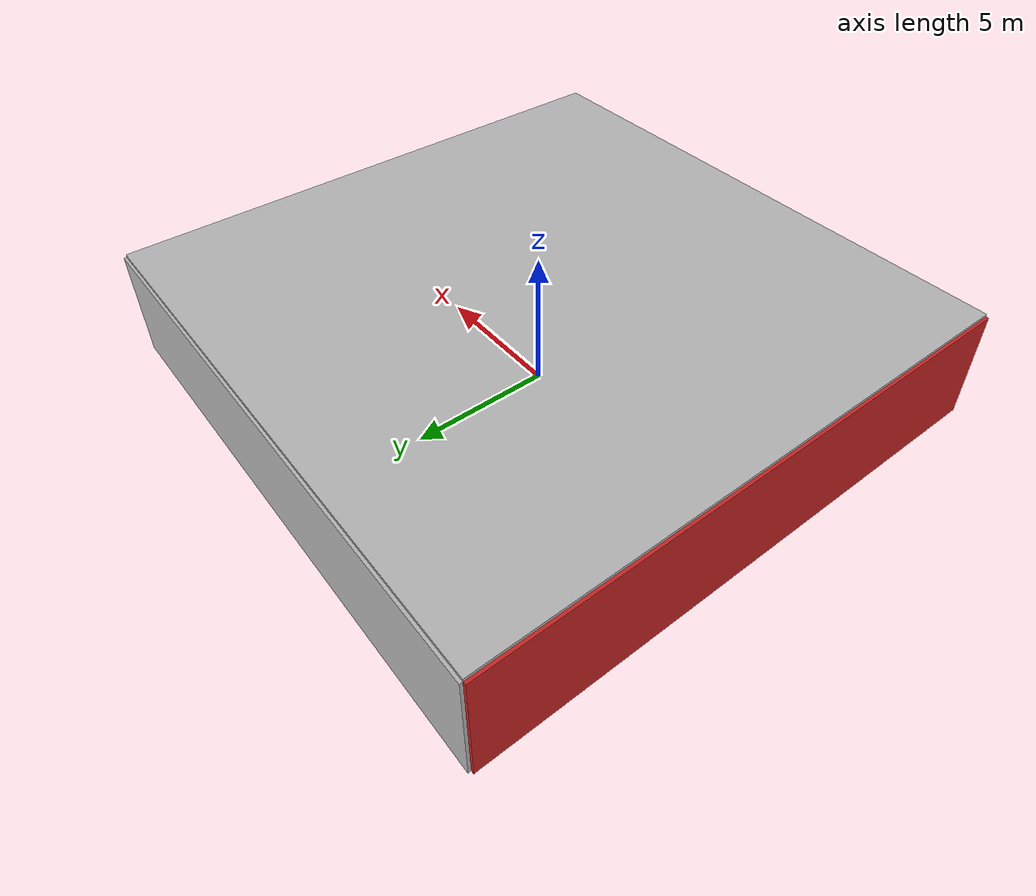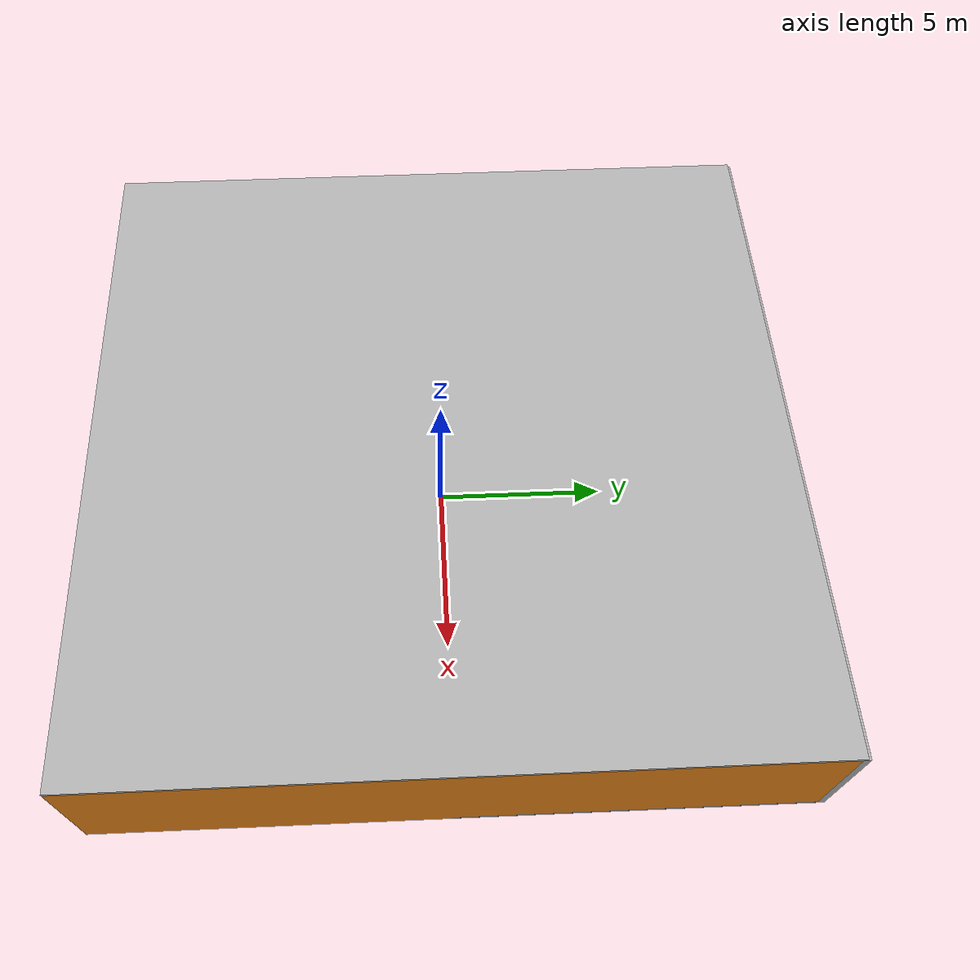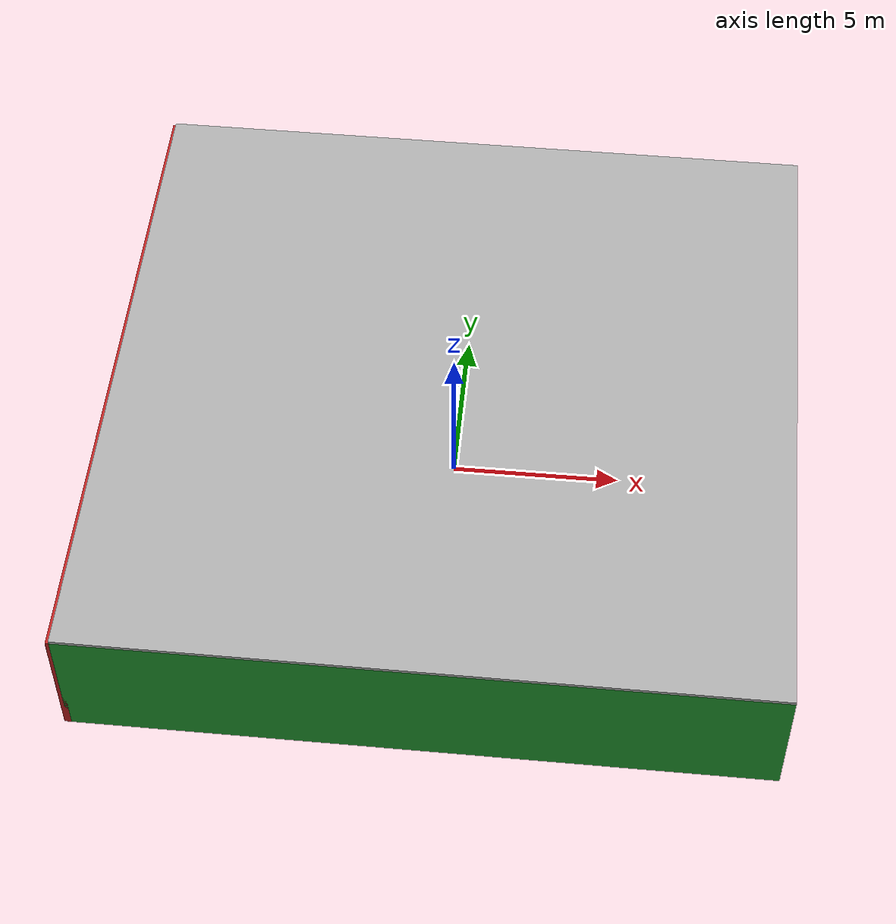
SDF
<sdf version="1.4">
 <world name="default">
  <physics type="ode">
   <max_step_size>0.001</max_step_size>
   <real_time_factor>1</real_time_factor>
   <real_time_update_rate>1000</real_time_update_rate>
   <gravity>0 0 -9.8</gravity>
  </physics>
  <scene><ambient>0.4 0.4 0.4 1</ambient><background>0.7 0.7 0.7 1</background><shadows>1</shadows></scene>
  <model name="Surrounding">
   <static>1</static>
   <link name="Ceiling">
    <collision name="Ceiling_Collision"><geometry><box><size>20 20 0.1</size></box></geometry></collision>
    <visual name="Ceiling_Visual">
     <geometry><box><size>20 20 0.1</size></box></geometry>
     <material>
      <script><uri>file://media/materials/scripts/gazebo.material</uri><name>Gazebo/LightOff</name></script>
     </material>
    </visual>
    <pose>0 0 4.05 0 0 0</pose>
   </link>
   <link name="Wall_South">
    <collision name="Wall_South_Collision">
     <geometry><box><size>20 0 4</size></box></geometry>
     <pose>0 0 2 0 -0 0</pose>
    </collision>
    <visual name="Wall_South_Visual">
     <pose>0 0 2 0 -0 0</pose>
     <geometry><box><size>20 0 4</size></box></geometry>
     <material>
      <script><uri>file://media/materials/scripts/gazebo.material</uri><name>Gazebo/GreenGlow</name></script>
     </material>
    </visual>
    <velocity_decay><linear>0</linear><angular>0</angular></velocity_decay>
    <pose>0 -10 0 0 -0 0</pose>
   </link>
   <link name="Wall_East">
    <collision name="Wall_21_Collision">
     <geometry><box><size>20 0 4</size></box></geometry>
     <pose>0 0 2 0 -0 0</pose>
    </collision>
    <visual name="Wall_21_Visual">
     <pose>0 0 2 0 -0 0</pose>
     <geometry><box><size>20 0 4</size></box></geometry>
     <material>
      <script><uri>file://media/materials/scripts/gazebo.material</uri><name>Gazebo/Orange</name></script>
     </material>
    </visual>
    <velocity_decay><linear>0</linear><angular>0</angular></velocity_decay>
    <pose>10 0 0 0 -0 1.5708</pose>
   </link>
   <link name="Wall_North">
    <collision name="Wall_22_Collision">
     <geometry><box><size>20 0.2 4</size></box></geometry>
     <pose>0 0 2 0 -0 0</pose>
    </collision>
    <visual name="Wall_22_Visual">
     <pose>0 0 2 0 -0 0</pose>
     <geometry><box><size>20 0.2 4</size></box></geometry>
     <material>
      <script><uri>file://media/materials/scripts/gazebo.material</uri><name>Gazebo/Pioneer2Body</name></script>
     </material>
    </visual>
    <velocity_decay><linear>0</linear><angular>0</angular></velocity_decay>
    <pose>0 10 0 0 -0 0</pose>
   </link>
   <link name="Wall_West">
    <collision name="Wall_23_Collision">
     <geometry><box><size>20 0.2 4</size></box></geometry>
     <pose>0 0 2 0 -0 0</pose>
    </collision>
    <visual name="Wall_23_Visual">
     <pose>0 0 2 0 -0 0</pose>
     <geometry><box><size>20 0.2 4</size></box></geometry>
     <material>
      <script><uri>file://media/materials/scripts/gazebo.material</uri><name>Gazebo/RedBright</name></script>
     </material>
    </visual>
    <velocity_decay><linear>0</linear><angular>0</angular></velocity_decay>
    <pose>-10 0 0 0 0 -1.5708</pose>
   </link>
   <link name="Ground_link">
    <collision name="collision">
     <pose>0 0 .05 0 -0 0</pose>
     <geometry><box><size>20 20 0.1</size></box></geometry>
    </collision>
    <visual name="visual">
     <pose>0 0 .05 0 -0 0</pose>
     <geometry><box><size>20 20 0.1</size></box></geometry>
     <material>
      <script><uri>file://media/materials/scripts/gazebo.material</uri><name>Gazebo/Black</name></script>
     </material>
    </visual>
   </link>
   <static>1</static>
  </model>
  <spherical_coordinates>
   <surface_model>EARTH_WGS84</surface_model>
   <latitude_deg>0</latitude_deg>
   <longitude_deg>0</longitude_deg>
   <elevation>0</elevation>
   <heading_deg>0</heading_deg>
  </spherical_coordinates>
  <light name="lightball_0" type="diffuse">
   <diffuse>0.8 0.8 0.8 1</diffuse>
   <specular>0.2 0.2 0.2 1</specular>
   <attenuation>
    <range>100</range>
    <constant>0.7</constant>
    <linear>0.01</linear>
    <quadratic>0.001</quadratic>
   </attenuation>
   <direction>-0.5 0.1 -0.9</direction>
   <pose>5.99780133464 1.63952698987 3.76230281291 0 0 0</pose>
  </light>
  <light name="lightball_1" type="diffuse">
   <diffuse>0.8 0.8 0.8 1</diffuse>
   <specular>0.2 0.2 0.2 1</specular>
   <attenuation>
    <range>100</range>
    <constant>0.7</constant>
    <linear>0.01</linear>
    <quadratic>0.001</quadratic>
   </attenuation>
   <direction>-0.5 0.1 -0.9</direction>
   <pose>-9.85390365323 6.11960750475 1.21129988872 0 0 0</pose>
  </light>
  <light name="lightball_2" type="diffuse">
   <diffuse>0.8 0.8 0.8 1</diffuse>
   <specular>0.2 0.2 0.2 1</specular>
   <attenuation>
    <range>100</range>
    <constant>0.7</constant>
    <linear>0.01</linear>
    <quadratic>0.001</quadratic>
   </attenuation>
   <direction>-0.5 0.1 -0.9</direction>
   <pose>-7.47887832703 -0.0568511582653 1.93356462574 0 0 0</pose>
  </light>
  <light name="lightball_3" type="diffuse">
   <diffuse>0.8 0.8 0.8 1</diffuse>
   <specular>0.2 0.2 0.2 1</specular>
   <attenuation>
    <range>100</range>
    <constant>0.7</constant>
    <linear>0.01</linear>
    <quadratic>0.001</quadratic>
   </attenuation>
   <direction>-0.5 0.1 -0.9</direction>
   <pose>-1.56656939087 -0.812632460567 0.81814437278 0 0 0</pose>
  </light>
  <light name="lightball_4" type="diffuse">
   <diffuse>0.8 0.8 0.8 1</diffuse>
   <specular>0.2 0.2 0.2 1</specular>
   <attenuation>
    <range>100</range>
    <constant>0.7</constant>
    <linear>0.01</linear>
    <quadratic>0.001</quadratic>
   </attenuation>
   <direction>-0.5 0.1 -0.9</direction>
   <pose>-8.27224150071 7.90572874717 1.3056415347 0 0 0</pose>
  </light>
  <light name="lightball_5" type="diffuse">
   <diffuse>0.8 0.8 0.8 1</diffuse>
   <specular>0.2 0.2 0.2 1</specular>
   <attenuation>
    <range>100</range>
    <constant>0.7</constant>
    <linear>0.01</linear>
    <quadratic>0.001</quadratic>
   </attenuation>
   <direction>-0.5 0.1 -0.9</direction>
   <pose>1.34940251829 -6.51619414423 3.75938818046 0 0 0</pose>
  </light>
  <include>
   <uri>model://robocup_3Dsim_goal</uri>
   <pose>-6.35627028067 -6.66321262987 0 0 0 1.77939179647</pose>
  </include>
  <include><uri>model://cabinet</uri><pose>-8.24077359423 -1.24971345916 0 0 0 0.841535840382</pose></include>
  <include><uri>model://cabinet</uri><pose>-3.90782611155 3.92155896506 0 0 0 2.263631027</pose></include>
  <include><uri>model://table</uri><pose>0.605142604651 -2.28114200787 0 0 0 0.0240068029945</pose></include>
  <include><uri>model://cabinet</uri><pose>2.29621682532 5.58488170627 0 0 0 0.96970111627</pose></include>
  <include>
   <uri>model://robocup_3Dsim_goal</uri>
   <pose>4.65487039533 -1.00498386744 0 0 0 0.0121191345632</pose>
  </include>
 </world>
</sdf>

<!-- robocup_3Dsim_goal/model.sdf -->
<sdf version="1.5">
  <model name="robocup_3d_goal">
    <static>true</static>
    <link name="left_post">
      <pose>0 1.05 0.45 0 0 0</pose>
      <collision name="collision">
        <geometry>
          <cylinder>
            <radius>0.05</radius>
            <length>0.9</length>
          </cylinder>
        </geometry>
      </collision>
      <visual name="visual">
        <geometry>
          <cylinder>
            <radius>0.05</radius>
            <length>0.9</length>
          </cylinder>
        </geometry>
        <material>
          <script>
            <uri>file://media/materials/scripts/gazebo.material</uri>
            <name>Gazebo/ZincYellow</name>
          </script>
        </material>
      </visual>
    </link>
    <link name="left_support_horiz_lower">
      <pose>0.30 1.05 0.01 0 0 0</pose>
      <collision name="collision">
        <geometry>
          <box>
            <size>0.50 0.02 0.02</size>
          </box>
        </geometry>
      </collision>
      <visual name="visual">
        <geometry>
          <box>
            <size>0.50 0.02 0.02</size>
          </box>
        </geometry>
        <material>
          <script>
            <uri>file://media/materials/scripts/gazebo.material</uri>
            <name>Gazebo/White</name>
          </script>
        </material>
      </visual>
    </link>
    <link name="left_support_horiz_upper">
      <pose>0.30 1.05 0.79 0 0 0</pose>
      <collision name="collision">
        <geometry>
          <box>
            <size>0.50 0.02 0.02</size>
          </box>
        </geometry>
      </collision>
      <visual name="visual">
        <geometry>
          <box>
            <size>0.50 0.02 0.02</size>
          </box>
        </geometry>
        <material>
          <script>
            <uri>file://media/materials/scripts/gazebo.material</uri>
            <name>Gazebo/White</name>
          </script>
        </material>
      </visual>
    </link>
    <link name="left_support_vertical">
      <pose>0.56 1.05 0.4 0 1.5708 0</pose>
      <collision name="collision">
        <geometry>
          <box>
            <size>0.80 0.02 0.02</size>
          </box>
        </geometry>
      </collision>
      <visual name="visual">
        <geometry>
          <box>
            <size>0.80 0.02 0.02</size>
          </box>
        </geometry>
        <material>
          <script>
            <uri>file://media/materials/scripts/gazebo.material</uri>
            <name>Gazebo/White</name>
          </script>
        </material>
      </visual>
    </link>
    <link name="right_support_horiz_lower">
      <pose>0.30 -1.05 0.01 0 0 0</pose>
      <collision name="collision">
        <geometry>
          <box>
            <size>0.50 0.02 0.02</size>
          </box>
        </geometry>
      </collision>
      <visual name="visual">
        <geometry>
          <box>
            <size>0.50 0.02 0.02</size>
          </box>
        </geometry>
        <material>
          <script>
            <uri>file://media/materials/scripts/gazebo.material</uri>
            <name>Gazebo/White</name>
          </script>
        </material>
      </visual>
    </link>
    <link name="right_support_horiz_upper">
      <pose>0.30 -1.05 0.79 0 0 0</pose>
      <collision name="collision">
        <geometry>
          <box>
            <size>0.50 0.02 0.02</size>
          </box>
        </geometry>
      </collision>
      <visual name="visual">
        <geometry>
          <box>
            <size>0.50 0.02 0.02</size>
          </box>
        </geometry>
        <material>
          <script>
            <uri>file://media/materials/scripts/gazebo.material</uri>
            <name>Gazebo/White</name>
          </script>
        </material>
      </visual>
    </link>
    <link name="right_support_vertical">
      <pose>0.56 -1.05 0.4 0 1.5708 0</pose>
      <collision name="collision">
        <geometry>
          <box>
            <size>0.80 0.02 0.02</size>
          </box>
        </geometry>
      </collision>
      <visual name="visual">
        <geometry>
          <box>
            <size>0.80 0.02 0.02</size>
          </box>
        </geometry>
        <material>
          <script>
            <uri>file://media/materials/scripts/gazebo.material</uri>
            <name>Gazebo/White</name>
          </script>
        </material>
      </visual>
    </link>
    <link name="center_support_horiz_lower">
      <pose>0.56 0 0.01 0 1.5708 0</pose>
      <collision name="collision">
        <geometry>
          <box>
            <size>0.02 2.08 0.02</size>
          </box>
        </geometry>
      </collision>
      <visual name="visual">
        <geometry>
          <box>
            <size>0.02 2.08 0.02</size>
          </box>
        </geometry>
        <material>
          <script>
            <uri>file://media/materials/scripts/gazebo.material</uri>
            <name>Gazebo/White</name>
          </script>
        </material>
      </visual>
    </link>
    <link name="center_support_horiz_upper">
      <pose>0.56 0 0.79 0 1.5708 0</pose>
      <collision name="collision">
        <geometry>
          <box>
            <size>0.02 2.08 0.02</size>
          </box>
        </geometry>
      </collision>
      <visual name="visual">
        <geometry>
          <box>
            <size>0.02 2.08 0.02</size>
          </box>
        </geometry>
        <material>
          <script>
            <uri>file://media/materials/scripts/gazebo.material</uri>
            <name>Gazebo/White</name>
          </script>
        </material>
      </visual>
    </link>
    <link name="right_post">
      <pose>0 -1.05 0.45 0 0 0</pose>
      <collision name="collision">
        <geometry>
          <cylinder>
            <radius>0.05</radius>
            <length>0.9</length>
          </cylinder>
        </geometry>
      </collision>
      <visual name="visual">
        <geometry>
          <cylinder>
            <radius>0.05</radius>
            <length>0.9</length>
          </cylinder>
        </geometry>
        <material>
          <script>
            <uri>file://media/materials/scripts/gazebo.material</uri>
            <name>Gazebo/ZincYellow</name>
          </script>
        </material>
      </visual>
    </link>
    <link name="crossbar">
      <pose>0 0 0.85 1.57 1.57 0</pose>
      <collision name="collision">
        <geometry>
          <cylinder>
            <radius>0.05</radius>
            <length>2.0</length>
          </cylinder>
        </geometry>
      </collision>
      <visual name="visual">
        <geometry>
          <cylinder>
            <radius>0.05</radius>
            <length>2.0</length>
          </cylinder>
        </geometry>
        <material>
          <script>
            <uri>file://media/materials/scripts/gazebo.material</uri>
            <name>Gazebo/ZincYellow</name>
          </script>
        </material>
      </visual>
    </link>
    <link name="center_net">
      <pose>0.56 0 0.40 0 0 0</pose>
      <collision name="collision">
        <geometry>
          <box>
            <size>0.01 2.1 0.80</size>
          </box>
        </geometry>
      </collision>
      <visual name="visual">
        <geometry>
          <box>
            <size>0.01 2.1 0.80</size>
          </box>
        </geometry>
        <material>
          <script>
            <uri>model://../model_source/models/robocup09_spl_field/materials/scripts/</uri>
            <uri>model://../model_source/models/robocup09_spl_field/materials/textures/</uri>
            <name>RoboCup/Net</name>
          </script>
        </material>
      </visual>
    </link>
    <link name="left_net">
      <pose>0.30 1.05 0.40 0 0 0</pose>
      <collision name="collision">
        <geometry>
          <box>
            <size>0.50 0.01 0.76</size>
          </box>
        </geometry>
      </collision>
      <visual name="visual">
        <geometry>
          <box>
            <size>0.50 0.01 0.76</size>
          </box>
        </geometry>
        <material>
          <script>
            <uri>model://../model_source/models/robocup09_spl_field/materials/scripts/</uri>
            <uri>model://../model_source/models/robocup09_spl_field/materials/textures/</uri>
            <name>RoboCup/Net</name>
          </script>
        </material>
      </visual>
    </link>
    <link name="right_net">
      <pose>0.30 -1.05 0.40 0 0 0</pose>
      <collision name="collision">
        <geometry>
          <box>
            <size>0.50 0.01 0.76</size>
          </box>
        </geometry>
      </collision>
      <visual name="visual">
        <geometry>
          <box>
            <size>0.50 0.01 0.76</size>
          </box>
        </geometry>
        <material>
          <script>
            <uri>model://../model_source/models/robocup09_spl_field/materials/scripts/</uri>
            <uri>model://../model_source/models/robocup09_spl_field/materials/textures/</uri>
            <name>RoboCup/Net</name>
          </script>
        </material>
      </visual>
    </link>
  </model>
</sdf>

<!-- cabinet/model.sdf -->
<sdf version="1.5">
  <model name="cabinet">
    <static>true</static>
    <link name="cabinet_bottom_plate">
      <inertial>
        <pose>0 0 -1 0 0 0</pose>
        <inertia>
          <ixx>2.050000</ixx>
          <ixy>0</ixy>
          <ixz>0</ixz>
          <iyy>2.050000</iyy>
          <iyz>0</iyz>
          <izz>2.050000</izz>
        </inertia>
        <mass>25.000000</mass>
      </inertial>
      <collision name="cabinet_bottom_plate_geom">
        <pose>0 0 0.010000 0 0 0</pose>
        <geometry>
          <box>
            <size>0.450000 0.450000 0.020000</size>
          </box>
        </geometry>
      </collision>
      <visual name="cabinet_bottom_plate_geom_visual">
        <pose>0 0 0.010000 0 0 0</pose>
        <geometry>
          <box>
            <size>0.450000 0.450000 0.020000</size>
          </box>
        </geometry>
        <material>
          <script>
            <uri>model://media/materials/scripts/gazebo.material</uri>
            <name>Gazebo/Wood</name>
          </script>
        </material>
      </visual>
      <collision name="cabinet_bottom_plate_geom_cabinet_back_plate">
        <pose>0.235000 0 0.510000 0 0 0</pose>
        <geometry>
          <box>
            <size>0.020000 0.450000 1.020000</size>
          </box>
        </geometry>
      </collision>
      <visual name="cabinet_bottom_plate_geom_cabinet_back_plate_visual">
        <pose>0.235000 0 0.510000 0 0 0</pose>
        <geometry>
          <box>
            <size>0.020000 0.450000 1.020000</size>
          </box>
        </geometry>
        <material>
          <script>
            <uri>model://media/materials/scripts/gazebo.material</uri>
            <name>Gazebo/Wood</name>
          </script>
        </material>
      </visual>
      <collision name="cabinet_bottom_plate_geom_cabinet_left_plate">
        <pose>0 0.235000 0.510000 0 0 0</pose>
        <geometry>
          <box>
            <size>0.450000 0.020000 1.020000</size>
          </box>
        </geometry>
      </collision>
      <visual name="cabinet_bottom_plate_geom_cabinet_left_plate_visual">
        <pose>0 0.235000 0.510000 0 0 0</pose>
        <geometry>
          <box>
            <size>0.450000 0.020000 1.020000</size>
          </box>
        </geometry>
        <material>
          <script>
            <uri>model://media/materials/scripts/gazebo.material</uri>
            <name>Gazebo/Wood</name>
          </script>
        </material>
      </visual>
      <collision name="cabinet_bottom_plate_geom_cabinet_middle_plate">
        <pose>0 0 0.510000 0 0 0</pose>
        <geometry>
          <box>
            <size>0.450000 0.450000 0.020000</size>
          </box>
        </geometry>
      </collision>
      <visual name="cabinet_bottom_plate_geom_cabinet_middle_plate_visual">
        <pose>0 0 0.510000 0 0 0</pose>
        <geometry>
          <box>
            <size>0.450000 0.450000 0.020000</size>
          </box>
        </geometry>
        <material>
          <script>
            <uri>model://media/materials/scripts/gazebo.material</uri>
            <name>Gazebo/Wood</name>
          </script>
        </material>
      </visual>
      <collision name="cabinet_bottom_plate_geom_cabinet_right_plate">
        <pose>0 -0.235000 0.510000 0 0 0</pose>
        <geometry>
          <box>
            <size>0.450000 0.020000 1.020000</size>
          </box>
        </geometry>
      </collision>
      <visual name="cabinet_bottom_plate_geom_cabinet_right_plate_visual">
        <pose>0 -0.235000 0.510000 0 0 0</pose>
        <geometry>
          <box>
            <size>0.450000 0.020000 1.020000</size>
          </box>
        </geometry>
        <material>
          <script>
            <uri>model://media/materials/scripts/gazebo.material</uri>
            <name>Gazebo/Wood</name>
          </script>
        </material>
      </visual>
      <collision name="cabinet_bottom_plate_geom_cabinet_top_plate">
        <pose>0 0 1.010000 0 0 0</pose>
        <geometry>
          <box>
            <size>0.450000 0.450000 0.020000</size>
          </box>
        </geometry>
      </collision>
      <visual name="cabinet_bottom_plate_geom_cabinet_top_plate_visual">
        <pose>0 0 1.010000 0 0 0</pose>
        <geometry>
          <box>
            <size>0.450000 0.450000 0.020000</size>
          </box>
        </geometry>
        <material>
          <script>
            <uri>model://media/materials/scripts/gazebo.material</uri>
            <name>Gazebo/Wood</name>
          </script>
        </material>
      </visual>
    </link>
  </model>
</sdf>

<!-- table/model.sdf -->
<sdf version="1.5">
  <model name="table">
    <static>true</static>
    <link name="link">
      <collision name="surface">
        <pose>0 0 1.0 0 0 0</pose>
        <geometry>
          <box>
            <size>1.5 0.8 0.03</size>
          </box>
        </geometry>
        <surface>
          <friction>
            <ode>
              <mu>0.6</mu>
              <mu2>0.6</mu2>
            </ode>
          </friction>
        </surface>
      </collision>
      <visual name="visual1">
        <pose>0 0 1.0 0 0 0</pose>
        <geometry>
          <box>
            <size>1.5 0.8 0.03</size>
          </box>
        </geometry>
        <material>
          <script>
            <uri>model://media/materials/scripts/gazebo.material</uri>
            <name>Gazebo/Wood</name>
          </script>
        </material>
      </visual>
      <collision name="front_left_leg">
        <pose>0.68 0.38 0.5 0 0 0</pose>
        <geometry>
          <cylinder>
            <radius>0.02</radius>
            <length>1.0</length>
          </cylinder>
        </geometry>
      </collision>
      <visual name="front_left_leg">
        <pose>0.68 0.38 0.5 0 0 0</pose>
        <geometry>
          <cylinder>
            <radius>0.02</radius>
            <length>1.0</length>
          </cylinder>
        </geometry>
        <material>
          <script>
            <uri>model://media/materials/scripts/gazebo.material</uri>
            <name>Gazebo/Grey</name>
          </script>
        </material>
      </visual>
      <collision name="front_right_leg">
        <pose>0.68 -0.38 0.5 0 0 0</pose>
        <geometry>
          <cylinder>
            <radius>0.02</radius>
            <length>1.0</length>
          </cylinder>
        </geometry>
      </collision>
      <visual name="front_right_leg">
        <pose>0.68 -0.38 0.5 0 0 0</pose>
        <geometry>
          <cylinder>
            <radius>0.02</radius>
            <length>1.0</length>
          </cylinder>
        </geometry>
        <material>
          <script>
            <uri>model://media/materials/scripts/gazebo.material</uri>
            <name>Gazebo/Grey</name>
          </script>
        </material>
      </visual>
      <collision name="back_right_leg">
        <pose>-0.68 -0.38 0.5 0 0 0</pose>
        <geometry>
          <cylinder>
            <radius>0.02</radius>
            <length>1.0</length>
          </cylinder>
        </geometry>
      </collision>
      <visual name="back_right_leg">
        <pose>-0.68 -0.38 0.5 0 0 0</pose>
        <geometry>
          <cylinder>
            <radius>0.02</radius>
            <length>1.0</length>
          </cylinder>
        </geometry>
        <material>
          <script>
            <uri>model://media/materials/scripts/gazebo.material</uri>
            <name>Gazebo/Grey</name>
          </script>
        </material>
      </visual>
      <collision name="back_left_leg">
        <pose>-0.68 0.38 0.5 0 0 0</pose>
        <geometry>
          <cylinder>
            <radius>0.02</radius>
            <length>1.0</length>
          </cylinder>
        </geometry>
      </collision>
      <visual name="back_left_leg">
        <pose>-0.68 0.38 0.5 0 0 0</pose>
        <geometry>
          <cylinder>
            <radius>0.02</radius>
            <length>1.0</length>
          </cylinder>
        </geometry>
        <material>
          <script>
            <uri>model://media/materials/scripts/gazebo.material</uri>
            <name>Gazebo/Grey</name>
          </script>
        </material>
      </visual>
    </link>
  </model>
</sdf>
